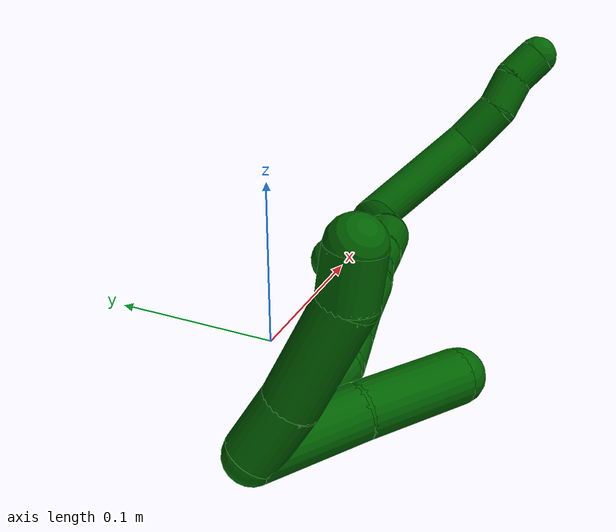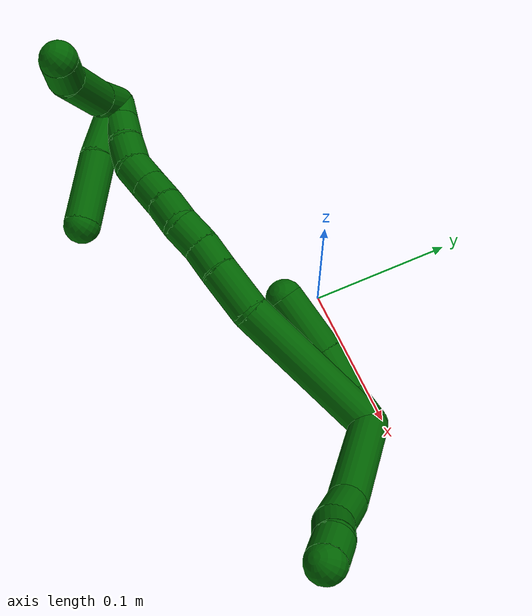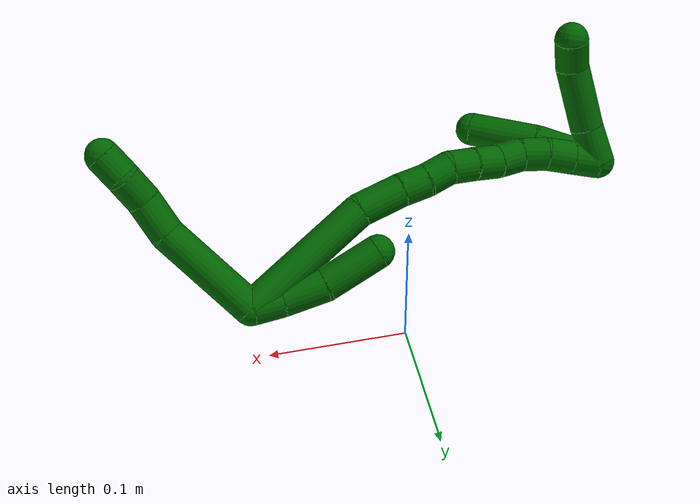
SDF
<sdf version="1.7">
 <world name="default">
  <model name="6">
   <static>0</static>
   <link name="6">
    <collision name="collision-cylinder-e_1_2_8">
     <pose>0.03259 -0.0027 0.021691 0.12386 0.980007 0.066126</pose>
     <geometry><cylinder><radius>0.0125</radius><length>0.078483</length></cylinder></geometry>
     <surface>
      <friction><ode><mu>1.16</mu><mu2>1.16</mu2><slip1>0</slip1><slip2>0</slip2></ode></friction>
      <contact><ode><kp>1e+06</kp><kd>1</kd><max_vel>0</max_vel><min_depth>0.001</min_depth></ode></contact>
     </surface>
    </collision>
    <visual name="visual-cylinder-e_1_2_8">
     <pose>0.03259 -0.0027 0.021691 0.12386 0.980007 0.066126</pose>
     <geometry><cylinder><radius>0.0125</radius><length>0.078483</length></cylinder></geometry>
     <material><ambient>0 0.392157 0.003922 1</ambient></material>
    </visual>
    <collision name="collision-cylinder-e_2_8_9">
     <pose>0.07483 -0.005764 0.054037 0.034035 0.735621 0.013116</pose>
     <geometry><cylinder><radius>0.0125</radius><length>0.028762</length></cylinder></geometry>
     <surface>
      <friction><ode><mu>1.16</mu><mu2>1.16</mu2><slip1>0</slip1><slip2>0</slip2></ode></friction>
      <contact><ode><kp>1e+06</kp><kd>1</kd><max_vel>0</max_vel><min_depth>0.001</min_depth></ode></contact>
     </surface>
    </collision>
    <visual name="visual-cylinder-e_2_8_9">
     <pose>0.07483 -0.005764 0.054037 0.034035 0.735621 0.013116</pose>
     <geometry><cylinder><radius>0.0125</radius><length>0.028762</length></cylinder></geometry>
     <material><ambient>0 0.392157 0.003922 1</ambient></material>
    </visual>
    <collision name="collision-cylinder-e_3_9_10">
     <pose>0.092105 -0.002939 0.072168 -0.403086 0.753549 -0.161337</pose>
     <geometry><cylinder><radius>0.0125</radius><length>0.022287</length></cylinder></geometry>
     <surface>
      <friction><ode><mu>1.16</mu><mu2>1.16</mu2><slip1>0</slip1><slip2>0</slip2></ode></friction>
      <contact><ode><kp>1e+06</kp><kd>1</kd><max_vel>0</max_vel><min_depth>0.001</min_depth></ode></contact>
     </surface>
    </collision>
    <visual name="visual-cylinder-e_3_9_10">
     <pose>0.092105 -0.002939 0.072168 -0.403086 0.753549 -0.161337</pose>
     <geometry><cylinder><radius>0.0125</radius><length>0.022287</length></cylinder></geometry>
     <material><ambient>0 0.392157 0.003922 1</ambient></material>
    </visual>
    <collision name="collision-cylinder-e_4_10_6">
     <pose>0.107666 -8e-06 0.086101 0.039772 0.887429 0.018907</pose>
     <geometry><cylinder><radius>0.0125</radius><length>0.020469</length></cylinder></geometry>
     <surface>
      <friction><ode><mu>1.16</mu><mu2>1.16</mu2><slip1>0</slip1><slip2>0</slip2></ode></friction>
      <contact><ode><kp>1e+06</kp><kd>1</kd><max_vel>0</max_vel><min_depth>0.001</min_depth></ode></contact>
     </surface>
    </collision>
    <visual name="visual-cylinder-e_4_10_6">
     <pose>0.107666 -8e-06 0.086101 0.039772 0.887429 0.018907</pose>
     <geometry><cylinder><radius>0.0125</radius><length>0.020469</length></cylinder></geometry>
     <material><ambient>0 0.392157 0.003922 1</ambient></material>
    </visual>
    <collision name="collision-cylinder-e_1_2_11">
     <pose>-0.010403 -0.00349 0.003681 0.758699 -1.11712 -0.488336</pose>
     <geometry><cylinder><radius>0.0125</radius><length>0.023147</length></cylinder></geometry>
     <surface>
      <friction><ode><mu>1.16</mu><mu2>1.16</mu2><slip1>0</slip1><slip2>0</slip2></ode></friction>
      <contact><ode><kp>1e+06</kp><kd>1</kd><max_vel>0</max_vel><min_depth>0.001</min_depth></ode></contact>
     </surface>
    </collision>
    <visual name="visual-cylinder-e_1_2_11">
     <pose>-0.010403 -0.00349 0.003681 0.758699 -1.11712 -0.488336</pose>
     <geometry><cylinder><radius>0.0125</radius><length>0.023147</length></cylinder></geometry>
     <material><ambient>0 0.392157 0.003922 1</ambient></material>
    </visual>
    <collision name="collision-cylinder-e_2_11_12">
     <pose>-0.035364 -0.008754 0.014743 0.235991 -1.09016 -0.143515</pose>
     <geometry><cylinder><radius>0.0125</radius><length>0.032837</length></cylinder></geometry>
     <surface>
      <friction><ode><mu>1.16</mu><mu2>1.16</mu2><slip1>0</slip1><slip2>0</slip2></ode></friction>
      <contact><ode><kp>1e+06</kp><kd>1</kd><max_vel>0</max_vel><min_depth>0.001</min_depth></ode></contact>
     </surface>
    </collision>
    <visual name="visual-cylinder-e_2_11_12">
     <pose>-0.035364 -0.008754 0.014743 0.235991 -1.09016 -0.143515</pose>
     <geometry><cylinder><radius>0.0125</radius><length>0.032837</length></cylinder></geometry>
     <material><ambient>0 0.392157 0.003922 1</ambient></material>
    </visual>
    <collision name="collision-cylinder-e_3_12_5">
     <pose>-0.066717 -0.013988 0.035919 0.245697 -0.868139 -0.114346</pose>
     <geometry><cylinder><radius>0.0125</radius><length>0.044016</length></cylinder></geometry>
     <surface>
      <friction><ode><mu>1.16</mu><mu2>1.16</mu2><slip1>0</slip1><slip2>0</slip2></ode></friction>
      <contact><ode><kp>1e+06</kp><kd>1</kd><max_vel>0</max_vel><min_depth>0.001</min_depth></ode></contact>
     </surface>
    </collision>
    <visual name="visual-cylinder-e_3_12_5">
     <pose>-0.066717 -0.013988 0.035919 0.245697 -0.868139 -0.114346</pose>
     <geometry><cylinder><radius>0.0125</radius><length>0.044016</length></cylinder></geometry>
     <material><ambient>0 0.392157 0.003922 1</ambient></material>
    </visual>
    <collision name="collision-cylinder-e_1_2_13">
     <pose>-0.033332 -0.015064 0.037664 0.380479 -0.68783 -0.137718</pose>
     <geometry><cylinder><radius>0.0125</radius><length>0.105006</length></cylinder></geometry>
     <surface>
      <friction><ode><mu>1.16</mu><mu2>1.16</mu2><slip1>0</slip1><slip2>0</slip2></ode></friction>
      <contact><ode><kp>1e+06</kp><kd>1</kd><max_vel>0</max_vel><min_depth>0.001</min_depth></ode></contact>
     </surface>
    </collision>
    <visual name="visual-cylinder-e_1_2_13">
     <pose>-0.033332 -0.015064 0.037664 0.380479 -0.68783 -0.137718</pose>
     <geometry><cylinder><radius>0.0125</radius><length>0.105006</length></cylinder></geometry>
     <material><ambient>0 0.392157 0.003922 1</ambient></material>
    </visual>
    <collision name="collision-cylinder-e_2_13_14">
     <pose>-0.080647 -0.034263 0.084161 0.437779 -0.961775 -0.231092</pose>
     <geometry><cylinder><radius>0.0125</radius><length>0.034095</length></cylinder></geometry>
     <surface>
      <friction><ode><mu>1.16</mu><mu2>1.16</mu2><slip1>0</slip1><slip2>0</slip2></ode></friction>
      <contact><ode><kp>1e+06</kp><kd>1</kd><max_vel>0</max_vel><min_depth>0.001</min_depth></ode></contact>
     </surface>
    </collision>
    <visual name="visual-cylinder-e_2_13_14">
     <pose>-0.080647 -0.034263 0.084161 0.437779 -0.961775 -0.231092</pose>
     <geometry><cylinder><radius>0.0125</radius><length>0.034095</length></cylinder></geometry>
     <material><ambient>0 0.392157 0.003922 1</ambient></material>
    </visual>
    <collision name="collision-cylinder-e_3_14_15">
     <pose>-0.103346 -0.04088 0.097404 0.512638 -1.04474 -0.299512</pose>
     <geometry><cylinder><radius>0.0125</radius><length>0.020159</length></cylinder></geometry>
     <surface>
      <friction><ode><mu>1.16</mu><mu2>1.16</mu2><slip1>0</slip1><slip2>0</slip2></ode></friction>
      <contact><ode><kp>1e+06</kp><kd>1</kd><max_vel>0</max_vel><min_depth>0.001</min_depth></ode></contact>
     </surface>
    </collision>
    <visual name="visual-cylinder-e_3_14_15">
     <pose>-0.103346 -0.04088 0.097404 0.512638 -1.04474 -0.299512</pose>
     <geometry><cylinder><radius>0.0125</radius><length>0.020159</length></cylinder></geometry>
     <material><ambient>0 0.392157 0.003922 1</ambient></material>
    </visual>
    <collision name="collision-cylinder-e_4_15_16">
     <pose>-0.119913 -0.046702 0.107195 0.555473 -0.892001 -0.270966</pose>
     <geometry><cylinder><radius>0.0125</radius><length>0.020172</length></cylinder></geometry>
     <surface>
      <friction><ode><mu>1.16</mu><mu2>1.16</mu2><slip1>0</slip1><slip2>0</slip2></ode></friction>
      <contact><ode><kp>1e+06</kp><kd>1</kd><max_vel>0</max_vel><min_depth>0.001</min_depth></ode></contact>
     </surface>
    </collision>
    <visual name="visual-cylinder-e_4_15_16">
     <pose>-0.119913 -0.046702 0.107195 0.555473 -0.892001 -0.270966</pose>
     <geometry><cylinder><radius>0.0125</radius><length>0.020172</length></cylinder></geometry>
     <material><ambient>0 0.392157 0.003922 1</ambient></material>
    </visual>
    <collision name="collision-cylinder-e_5_16_17">
     <pose>-0.13694 -0.053443 0.114791 0.993519 -1.15433 -0.678647</pose>
     <geometry><cylinder><radius>0.0125</radius><length>0.020069</length></cylinder></geometry>
     <surface>
      <friction><ode><mu>1.16</mu><mu2>1.16</mu2><slip1>0</slip1><slip2>0</slip2></ode></friction>
      <contact><ode><kp>1e+06</kp><kd>1</kd><max_vel>0</max_vel><min_depth>0.001</min_depth></ode></contact>
     </surface>
    </collision>
    <visual name="visual-cylinder-e_5_16_17">
     <pose>-0.13694 -0.053443 0.114791 0.993519 -1.15433 -0.678647</pose>
     <geometry><cylinder><radius>0.0125</radius><length>0.020069</length></cylinder></geometry>
     <material><ambient>0 0.392157 0.003922 1</ambient></material>
    </visual>
    <collision name="collision-cylinder-e_6_17_18">
     <pose>-0.155276 -0.06103 0.118739 1.17837 -1.11144 -0.786848</pose>
     <geometry><cylinder><radius>0.0125</radius><length>0.020438</length></cylinder></geometry>
     <surface>
      <friction><ode><mu>1.16</mu><mu2>1.16</mu2><slip1>0</slip1><slip2>0</slip2></ode></friction>
      <contact><ode><kp>1e+06</kp><kd>1</kd><max_vel>0</max_vel><min_depth>0.001</min_depth></ode></contact>
     </surface>
    </collision>
    <visual name="visual-cylinder-e_6_17_18">
     <pose>-0.155276 -0.06103 0.118739 1.17837 -1.11144 -0.786848</pose>
     <geometry><cylinder><radius>0.0125</radius><length>0.020438</length></cylinder></geometry>
     <material><ambient>0 0.392157 0.003922 1</ambient></material>
    </visual>
    <collision name="collision-cylinder-e_7_18_19">
     <pose>-0.173174 -0.068781 0.12383 0.815113 -1.05994 -0.495488</pose>
     <geometry><cylinder><radius>0.0125</radius><length>0.020033</length></cylinder></geometry>
     <surface>
      <friction><ode><mu>1.16</mu><mu2>1.16</mu2><slip1>0</slip1><slip2>0</slip2></ode></friction>
      <contact><ode><kp>1e+06</kp><kd>1</kd><max_vel>0</max_vel><min_depth>0.001</min_depth></ode></contact>
     </surface>
    </collision>
    <visual name="visual-cylinder-e_7_18_19">
     <pose>-0.173174 -0.068781 0.12383 0.815113 -1.05994 -0.495488</pose>
     <geometry><cylinder><radius>0.0125</radius><length>0.020033</length></cylinder></geometry>
     <material><ambient>0 0.392157 0.003922 1</ambient></material>
    </visual>
    <collision name="collision-cylinder-e_8_19_20">
     <pose>-0.191742 -0.073138 0.128882 0.437625 -1.38282 -0.364046</pose>
     <geometry><cylinder><radius>0.0125</radius><length>0.020014</length></cylinder></geometry>
     <surface>
      <friction><ode><mu>1.16</mu><mu2>1.16</mu2><slip1>0</slip1><slip2>0</slip2></ode></friction>
      <contact><ode><kp>1e+06</kp><kd>1</kd><max_vel>0</max_vel><min_depth>0.001</min_depth></ode></contact>
     </surface>
    </collision>
    <visual name="visual-cylinder-e_8_19_20">
     <pose>-0.191742 -0.073138 0.128882 0.437625 -1.38282 -0.364046</pose>
     <geometry><cylinder><radius>0.0125</radius><length>0.020014</length></cylinder></geometry>
     <material><ambient>0 0.392157 0.003922 1</ambient></material>
    </visual>
    <collision name="collision-cylinder-e_9_20_21">
     <pose>-0.211504 -0.075134 0.130375 1.73625 -1.44857 -1.61445</pose>
     <geometry><cylinder><radius>0.0125</radius><length>0.020011</length></cylinder></geometry>
     <surface>
      <friction><ode><mu>1.16</mu><mu2>1.16</mu2><slip1>0</slip1><slip2>0</slip2></ode></friction>
      <contact><ode><kp>1e+06</kp><kd>1</kd><max_vel>0</max_vel><min_depth>0.001</min_depth></ode></contact>
     </surface>
    </collision>
    <visual name="visual-cylinder-e_9_20_21">
     <pose>-0.211504 -0.075134 0.130375 1.73625 -1.44857 -1.61445</pose>
     <geometry><cylinder><radius>0.0125</radius><length>0.020011</length></cylinder></geometry>
     <material><ambient>0 0.392157 0.003922 1</ambient></material>
    </visual>
    <collision name="collision-cylinder-e_10_21_1">
     <pose>-0.231379 -0.077394 0.130047 1.69081 -1.46416 -1.58426</pose>
     <geometry><cylinder><radius>0.0125</radius><length>0.020003</length></cylinder></geometry>
     <surface>
      <friction><ode><mu>1.16</mu><mu2>1.16</mu2><slip1>0</slip1><slip2>0</slip2></ode></friction>
      <contact><ode><kp>1e+06</kp><kd>1</kd><max_vel>0</max_vel><min_depth>0.001</min_depth></ode></contact>
     </surface>
    </collision>
    <visual name="visual-cylinder-e_10_21_1">
     <pose>-0.231379 -0.077394 0.130047 1.69081 -1.46416 -1.58426</pose>
     <geometry><cylinder><radius>0.0125</radius><length>0.020003</length></cylinder></geometry>
     <material><ambient>0 0.392157 0.003922 1</ambient></material>
    </visual>
    <collision name="collision-cylinder-e_1_1_22">
     <pose>-0.21871 -0.086409 0.133244 1.17507 1.20642 0.860253</pose>
     <geometry><cylinder><radius>0.0125</radius><length>0.048407</length></cylinder></geometry>
     <surface>
      <friction><ode><mu>1.16</mu><mu2>1.16</mu2><slip1>0</slip1><slip2>0</slip2></ode></friction>
      <contact><ode><kp>1e+06</kp><kd>1</kd><max_vel>0</max_vel><min_depth>0.001</min_depth></ode></contact>
     </surface>
    </collision>
    <visual name="visual-cylinder-e_1_1_22">
     <pose>-0.21871 -0.086409 0.133244 1.17507 1.20642 0.860253</pose>
     <geometry><cylinder><radius>0.0125</radius><length>0.048407</length></cylinder></geometry>
     <material><ambient>0 0.392157 0.003922 1</ambient></material>
    </visual>
    <collision name="collision-cylinder-e_2_22_4">
     <pose>-0.171731 -0.102842 0.13678 1.54596 1.23596 1.2126</pose>
     <geometry><cylinder><radius>0.0125</radius><length>0.051593</length></cylinder></geometry>
     <surface>
      <friction><ode><mu>1.16</mu><mu2>1.16</mu2><slip1>0</slip1><slip2>0</slip2></ode></friction>
      <contact><ode><kp>1e+06</kp><kd>1</kd><max_vel>0</max_vel><min_depth>0.001</min_depth></ode></contact>
     </surface>
    </collision>
    <visual name="visual-cylinder-e_2_22_4">
     <pose>-0.171731 -0.102842 0.13678 1.54596 1.23596 1.2126</pose>
     <geometry><cylinder><radius>0.0125</radius><length>0.051593</length></cylinder></geometry>
     <material><ambient>0 0.392157 0.003922 1</ambient></material>
    </visual>
    <collision name="collision-cylinder-e_1_1_23">
     <pose>-0.234561 -0.077054 0.142347 -0.111894 0.49577 -0.028347</pose>
     <geometry><cylinder><radius>0.0125</radius><length>0.028436</length></cylinder></geometry>
     <surface>
      <friction><ode><mu>1.16</mu><mu2>1.16</mu2><slip1>0</slip1><slip2>0</slip2></ode></friction>
      <contact><ode><kp>1e+06</kp><kd>1</kd><max_vel>0</max_vel><min_depth>0.001</min_depth></ode></contact>
     </surface>
    </collision>
    <visual name="visual-cylinder-e_1_1_23">
     <pose>-0.234561 -0.077054 0.142347 -0.111894 0.49577 -0.028347</pose>
     <geometry><cylinder><radius>0.0125</radius><length>0.028436</length></cylinder></geometry>
     <material><ambient>0 0.392157 0.003922 1</ambient></material>
    </visual>
    <collision name="collision-cylinder-e_2_23_24">
     <pose>-0.217662 -0.071174 0.176222 -0.206082 0.433272 -0.04551</pose>
     <geometry><cylinder><radius>0.0125</radius><length>0.048282</length></cylinder></geometry>
     <surface>
      <friction><ode><mu>1.16</mu><mu2>1.16</mu2><slip1>0</slip1><slip2>0</slip2></ode></friction>
      <contact><ode><kp>1e+06</kp><kd>1</kd><max_vel>0</max_vel><min_depth>0.001</min_depth></ode></contact>
     </surface>
    </collision>
    <visual name="visual-cylinder-e_2_23_24">
     <pose>-0.217662 -0.071174 0.176222 -0.206082 0.433272 -0.04551</pose>
     <geometry><cylinder><radius>0.0125</radius><length>0.048282</length></cylinder></geometry>
     <material><ambient>0 0.392157 0.003922 1</ambient></material>
    </visual>
    <collision name="collision-cylinder-e_3_24_3">
     <pose>-0.204518 -0.061227 0.207498 -0.507373 0.261373 -0.068129</pose>
     <geometry><cylinder><radius>0.0125</radius><length>0.023282</length></cylinder></geometry>
     <surface>
      <friction><ode><mu>1.16</mu><mu2>1.16</mu2><slip1>0</slip1><slip2>0</slip2></ode></friction>
      <contact><ode><kp>1e+06</kp><kd>1</kd><max_vel>0</max_vel><min_depth>0.001</min_depth></ode></contact>
     </surface>
    </collision>
    <visual name="visual-cylinder-e_3_24_3">
     <pose>-0.204518 -0.061227 0.207498 -0.507373 0.261373 -0.068129</pose>
     <geometry><cylinder><radius>0.0125</radius><length>0.023282</length></cylinder></geometry>
     <material><ambient>0 0.392157 0.003922 1</ambient></material>
    </visual>
    <collision name="collision-sphere-3">
     <pose>-0.20151 -0.055763 0.217327 0 -0 0</pose>
     <geometry><sphere><radius>0.0125</radius></sphere></geometry>
     <surface>
      <friction><ode><mu>1.16</mu><mu2>1.16</mu2><slip1>0</slip1><slip2>0</slip2></ode></friction>
      <contact><ode><kp>1e+06</kp><kd>1</kd><max_vel>0</max_vel><min_depth>0.001</min_depth></ode></contact>
     </surface>
    </collision>
    <visual name="visual-sphere-3">
     <pose>-0.20151 -0.055763 0.217327 0 -0 0</pose>
     <geometry><sphere><radius>0.0125</radius></sphere></geometry>
     <material><ambient>0 0.392157 0.003922 1</ambient></material>
    </visual>
    <collision name="collision-sphere-24">
     <pose>-0.207526 -0.066691 0.197669 0 -0 0</pose>
     <geometry><sphere><radius>0.0125</radius></sphere></geometry>
     <surface>
      <friction><ode><mu>1.16</mu><mu2>1.16</mu2><slip1>0</slip1><slip2>0</slip2></ode></friction>
      <contact><ode><kp>1e+06</kp><kd>1</kd><max_vel>0</max_vel><min_depth>0.001</min_depth></ode></contact>
     </surface>
    </collision>
    <visual name="visual-sphere-24">
     <pose>-0.207526 -0.066691 0.197669 0 -0 0</pose>
     <geometry><sphere><radius>0.0125</radius></sphere></geometry>
     <material><ambient>0 0.392157 0.003922 1</ambient></material>
    </visual>
    <collision name="collision-sphere-23">
     <pose>-0.227797 -0.075658 0.154775 0 -0 0</pose>
     <geometry><sphere><radius>0.0125</radius></sphere></geometry>
     <surface>
      <friction><ode><mu>1.16</mu><mu2>1.16</mu2><slip1>0</slip1><slip2>0</slip2></ode></friction>
      <contact><ode><kp>1e+06</kp><kd>1</kd><max_vel>0</max_vel><min_depth>0.001</min_depth></ode></contact>
     </surface>
    </collision>
    <visual name="visual-sphere-23">
     <pose>-0.227797 -0.075658 0.154775 0 -0 0</pose>
     <geometry><sphere><radius>0.0125</radius></sphere></geometry>
     <material><ambient>0 0.392157 0.003922 1</ambient></material>
    </visual>
    <collision name="collision-sphere-4">
     <pose>-0.147367 -0.111317 0.13699 0 -0 0</pose>
     <geometry><sphere><radius>0.0125</radius></sphere></geometry>
     <surface>
      <friction><ode><mu>1.16</mu><mu2>1.16</mu2><slip1>0</slip1><slip2>0</slip2></ode></friction>
      <contact><ode><kp>1e+06</kp><kd>1</kd><max_vel>0</max_vel><min_depth>0.001</min_depth></ode></contact>
     </surface>
    </collision>
    <visual name="visual-sphere-4">
     <pose>-0.147367 -0.111317 0.13699 0 -0 0</pose>
     <geometry><sphere><radius>0.0125</radius></sphere></geometry>
     <material><ambient>0 0.392157 0.003922 1</ambient></material>
    </visual>
    <collision name="collision-sphere-22">
     <pose>-0.196095 -0.094368 0.136569 0 -0 0</pose>
     <geometry><sphere><radius>0.0125</radius></sphere></geometry>
     <surface>
      <friction><ode><mu>1.16</mu><mu2>1.16</mu2><slip1>0</slip1><slip2>0</slip2></ode></friction>
      <contact><ode><kp>1e+06</kp><kd>1</kd><max_vel>0</max_vel><min_depth>0.001</min_depth></ode></contact>
     </surface>
    </collision>
    <visual name="visual-sphere-22">
     <pose>-0.196095 -0.094368 0.136569 0 -0 0</pose>
     <geometry><sphere><radius>0.0125</radius></sphere></geometry>
     <material><ambient>0 0.392157 0.003922 1</ambient></material>
    </visual>
    <collision name="collision-sphere-1">
     <pose>-0.241324 -0.078451 0.129919 0 -0 0</pose>
     <geometry><sphere><radius>0.0125</radius></sphere></geometry>
     <surface>
      <friction><ode><mu>1.16</mu><mu2>1.16</mu2><slip1>0</slip1><slip2>0</slip2></ode></friction>
      <contact><ode><kp>1e+06</kp><kd>1</kd><max_vel>0</max_vel><min_depth>0.001</min_depth></ode></contact>
     </surface>
    </collision>
    <visual name="visual-sphere-1">
     <pose>-0.241324 -0.078451 0.129919 0 -0 0</pose>
     <geometry><sphere><radius>0.0125</radius></sphere></geometry>
     <material><ambient>0 0.392157 0.003922 1</ambient></material>
    </visual>
    <collision name="collision-sphere-21">
     <pose>-0.221435 -0.076337 0.130174 0 -0 0</pose>
     <geometry><sphere><radius>0.0125</radius></sphere></geometry>
     <surface>
      <friction><ode><mu>1.16</mu><mu2>1.16</mu2><slip1>0</slip1><slip2>0</slip2></ode></friction>
      <contact><ode><kp>1e+06</kp><kd>1</kd><max_vel>0</max_vel><min_depth>0.001</min_depth></ode></contact>
     </surface>
    </collision>
    <visual name="visual-sphere-21">
     <pose>-0.221435 -0.076337 0.130174 0 -0 0</pose>
     <geometry><sphere><radius>0.0125</radius></sphere></geometry>
     <material><ambient>0 0.392157 0.003922 1</ambient></material>
    </visual>
    <collision name="collision-sphere-11">
     <pose>-0.020805 -0.006979 0.007362 0 -0 0</pose>
     <geometry><sphere><radius>0.0125</radius></sphere></geometry>
     <surface>
      <friction><ode><mu>1.16</mu><mu2>1.16</mu2><slip1>0</slip1><slip2>0</slip2></ode></friction>
      <contact><ode><kp>1e+06</kp><kd>1</kd><max_vel>0</max_vel><min_depth>0.001</min_depth></ode></contact>
     </surface>
    </collision>
    <visual name="visual-sphere-11">
     <pose>-0.020805 -0.006979 0.007362 0 -0 0</pose>
     <geometry><sphere><radius>0.0125</radius></sphere></geometry>
     <material><ambient>0 0.392157 0.003922 1</ambient></material>
    </visual>
    <collision name="collision-sphere-6">
     <pose>0.115602 -0.000265 0.092558 0 -0 0</pose>
     <geometry><sphere><radius>0.0125</radius></sphere></geometry>
     <surface>
      <friction><ode><mu>1.16</mu><mu2>1.16</mu2><slip1>0</slip1><slip2>0</slip2></ode></friction>
      <contact><ode><kp>1e+06</kp><kd>1</kd><max_vel>0</max_vel><min_depth>0.001</min_depth></ode></contact>
     </surface>
    </collision>
    <visual name="visual-sphere-6">
     <pose>0.115602 -0.000265 0.092558 0 -0 0</pose>
     <geometry><sphere><radius>0.0125</radius></sphere></geometry>
     <material><ambient>0 0.392157 0.003922 1</ambient></material>
    </visual>
    <collision name="collision-sphere-10">
     <pose>0.09973 0.000249 0.079644 0 -0 0</pose>
     <geometry><sphere><radius>0.0125</radius></sphere></geometry>
     <surface>
      <friction><ode><mu>1.16</mu><mu2>1.16</mu2><slip1>0</slip1><slip2>0</slip2></ode></friction>
      <contact><ode><kp>1e+06</kp><kd>1</kd><max_vel>0</max_vel><min_depth>0.001</min_depth></ode></contact>
     </surface>
    </collision>
    <visual name="visual-sphere-10">
     <pose>0.09973 0.000249 0.079644 0 -0 0</pose>
     <geometry><sphere><radius>0.0125</radius></sphere></geometry>
     <material><ambient>0 0.392157 0.003922 1</ambient></material>
    </visual>
    <collision name="collision-sphere-9">
     <pose>0.084481 -0.006126 0.064693 0 -0 0</pose>
     <geometry><sphere><radius>0.0125</radius></sphere></geometry>
     <surface>
      <friction><ode><mu>1.16</mu><mu2>1.16</mu2><slip1>0</slip1><slip2>0</slip2></ode></friction>
      <contact><ode><kp>1e+06</kp><kd>1</kd><max_vel>0</max_vel><min_depth>0.001</min_depth></ode></contact>
     </surface>
    </collision>
    <visual name="visual-sphere-9">
     <pose>0.084481 -0.006126 0.064693 0 -0 0</pose>
     <geometry><sphere><radius>0.0125</radius></sphere></geometry>
     <material><ambient>0 0.392157 0.003922 1</ambient></material>
    </visual>
    <collision name="collision-sphere-2">
     <geometry><sphere><radius>0.0125</radius></sphere></geometry>
     <surface>
      <friction><ode><mu>1.16</mu><mu2>1.16</mu2><slip1>0</slip1><slip2>0</slip2></ode></friction>
      <contact><ode><kp>1e+06</kp><kd>1</kd><max_vel>0</max_vel><min_depth>0.001</min_depth></ode></contact>
     </surface>
    </collision>
    <visual name="visual-sphere-2">
     <geometry><sphere><radius>0.0125</radius></sphere></geometry>
     <material><ambient>0 0.392157 0.003922 1</ambient></material>
    </visual>
    <collision name="collision-sphere-19">
     <pose>-0.181911 -0.072345 0.127189 0 -0 0</pose>
     <geometry><sphere><radius>0.0125</radius></sphere></geometry>
     <surface>
      <friction><ode><mu>1.16</mu><mu2>1.16</mu2><slip1>0</slip1><slip2>0</slip2></ode></friction>
      <contact><ode><kp>1e+06</kp><kd>1</kd><max_vel>0</max_vel><min_depth>0.001</min_depth></ode></contact>
     </surface>
    </collision>
    <visual name="visual-sphere-19">
     <pose>-0.181911 -0.072345 0.127189 0 -0 0</pose>
     <geometry><sphere><radius>0.0125</radius></sphere></geometry>
     <material><ambient>0 0.392157 0.003922 1</ambient></material>
    </visual>
    <collision name="collision-sphere-8">
     <pose>0.06518 -0.005401 0.043381 0 -0 0</pose>
     <geometry><sphere><radius>0.0125</radius></sphere></geometry>
     <surface>
      <friction><ode><mu>1.16</mu><mu2>1.16</mu2><slip1>0</slip1><slip2>0</slip2></ode></friction>
      <contact><ode><kp>1e+06</kp><kd>1</kd><max_vel>0</max_vel><min_depth>0.001</min_depth></ode></contact>
     </surface>
    </collision>
    <visual name="visual-sphere-8">
     <pose>0.06518 -0.005401 0.043381 0 -0 0</pose>
     <geometry><sphere><radius>0.0125</radius></sphere></geometry>
     <material><ambient>0 0.392157 0.003922 1</ambient></material>
    </visual>
    <collision name="collision-sphere-12">
     <pose>-0.049922 -0.010529 0.022124 0 -0 0</pose>
     <geometry><sphere><radius>0.0125</radius></sphere></geometry>
     <surface>
      <friction><ode><mu>1.16</mu><mu2>1.16</mu2><slip1>0</slip1><slip2>0</slip2></ode></friction>
      <contact><ode><kp>1e+06</kp><kd>1</kd><max_vel>0</max_vel><min_depth>0.001</min_depth></ode></contact>
     </surface>
    </collision>
    <visual name="visual-sphere-12">
     <pose>-0.049922 -0.010529 0.022124 0 -0 0</pose>
     <geometry><sphere><radius>0.0125</radius></sphere></geometry>
     <material><ambient>0 0.392157 0.003922 1</ambient></material>
    </visual>
    <collision name="collision-sphere-5">
     <pose>-0.083512 -0.017448 0.049715 0 -0 0</pose>
     <geometry><sphere><radius>0.0125</radius></sphere></geometry>
     <surface>
      <friction><ode><mu>1.16</mu><mu2>1.16</mu2><slip1>0</slip1><slip2>0</slip2></ode></friction>
      <contact><ode><kp>1e+06</kp><kd>1</kd><max_vel>0</max_vel><min_depth>0.001</min_depth></ode></contact>
     </surface>
    </collision>
    <visual name="visual-sphere-5">
     <pose>-0.083512 -0.017448 0.049715 0 -0 0</pose>
     <geometry><sphere><radius>0.0125</radius></sphere></geometry>
     <material><ambient>0 0.392157 0.003922 1</ambient></material>
    </visual>
    <collision name="collision-sphere-13">
     <pose>-0.066664 -0.030129 0.075328 0 -0 0</pose>
     <geometry><sphere><radius>0.0125</radius></sphere></geometry>
     <surface>
      <friction><ode><mu>1.16</mu><mu2>1.16</mu2><slip1>0</slip1><slip2>0</slip2></ode></friction>
      <contact><ode><kp>1e+06</kp><kd>1</kd><max_vel>0</max_vel><min_depth>0.001</min_depth></ode></contact>
     </surface>
    </collision>
    <visual name="visual-sphere-13">
     <pose>-0.066664 -0.030129 0.075328 0 -0 0</pose>
     <geometry><sphere><radius>0.0125</radius></sphere></geometry>
     <material><ambient>0 0.392157 0.003922 1</ambient></material>
    </visual>
    <collision name="collision-sphere-14">
     <pose>-0.094629 -0.038397 0.092994 0 -0 0</pose>
     <geometry><sphere><radius>0.0125</radius></sphere></geometry>
     <surface>
      <friction><ode><mu>1.16</mu><mu2>1.16</mu2><slip1>0</slip1><slip2>0</slip2></ode></friction>
      <contact><ode><kp>1e+06</kp><kd>1</kd><max_vel>0</max_vel><min_depth>0.001</min_depth></ode></contact>
     </surface>
    </collision>
    <visual name="visual-sphere-14">
     <pose>-0.094629 -0.038397 0.092994 0 -0 0</pose>
     <geometry><sphere><radius>0.0125</radius></sphere></geometry>
     <material><ambient>0 0.392157 0.003922 1</ambient></material>
    </visual>
    <collision name="collision-sphere-15">
     <pose>-0.112063 -0.043362 0.101815 0 -0 0</pose>
     <geometry><sphere><radius>0.0125</radius></sphere></geometry>
     <surface>
      <friction><ode><mu>1.16</mu><mu2>1.16</mu2><slip1>0</slip1><slip2>0</slip2></ode></friction>
      <contact><ode><kp>1e+06</kp><kd>1</kd><max_vel>0</max_vel><min_depth>0.001</min_depth></ode></contact>
     </surface>
    </collision>
    <visual name="visual-sphere-15">
     <pose>-0.112063 -0.043362 0.101815 0 -0 0</pose>
     <geometry><sphere><radius>0.0125</radius></sphere></geometry>
     <material><ambient>0 0.392157 0.003922 1</ambient></material>
    </visual>
    <collision name="collision-sphere-16">
     <pose>-0.127763 -0.050041 0.112575 0 -0 0</pose>
     <geometry><sphere><radius>0.0125</radius></sphere></geometry>
     <surface>
      <friction><ode><mu>1.16</mu><mu2>1.16</mu2><slip1>0</slip1><slip2>0</slip2></ode></friction>
      <contact><ode><kp>1e+06</kp><kd>1</kd><max_vel>0</max_vel><min_depth>0.001</min_depth></ode></contact>
     </surface>
    </collision>
    <visual name="visual-sphere-16">
     <pose>-0.127763 -0.050041 0.112575 0 -0 0</pose>
     <geometry><sphere><radius>0.0125</radius></sphere></geometry>
     <material><ambient>0 0.392157 0.003922 1</ambient></material>
    </visual>
    <collision name="collision-sphere-17">
     <pose>-0.146117 -0.056844 0.117006 0 -0 0</pose>
     <geometry><sphere><radius>0.0125</radius></sphere></geometry>
     <surface>
      <friction><ode><mu>1.16</mu><mu2>1.16</mu2><slip1>0</slip1><slip2>0</slip2></ode></friction>
      <contact><ode><kp>1e+06</kp><kd>1</kd><max_vel>0</max_vel><min_depth>0.001</min_depth></ode></contact>
     </surface>
    </collision>
    <visual name="visual-sphere-17">
     <pose>-0.146117 -0.056844 0.117006 0 -0 0</pose>
     <geometry><sphere><radius>0.0125</radius></sphere></geometry>
     <material><ambient>0 0.392157 0.003922 1</ambient></material>
    </visual>
    <collision name="collision-sphere-18">
     <pose>-0.164436 -0.065217 0.120472 0 -0 0</pose>
     <geometry><sphere><radius>0.0125</radius></sphere></geometry>
     <surface>
      <friction><ode><mu>1.16</mu><mu2>1.16</mu2><slip1>0</slip1><slip2>0</slip2></ode></friction>
      <contact><ode><kp>1e+06</kp><kd>1</kd><max_vel>0</max_vel><min_depth>0.001</min_depth></ode></contact>
     </surface>
    </collision>
    <visual name="visual-sphere-18">
     <pose>-0.164436 -0.065217 0.120472 0 -0 0</pose>
     <geometry><sphere><radius>0.0125</radius></sphere></geometry>
     <material><ambient>0 0.392157 0.003922 1</ambient></material>
    </visual>
    <collision name="collision-sphere-20">
     <pose>-0.201573 -0.07393 0.130576 0 -0 0</pose>
     <geometry><sphere><radius>0.0125</radius></sphere></geometry>
     <surface>
      <friction><ode><mu>1.16</mu><mu2>1.16</mu2><slip1>0</slip1><slip2>0</slip2></ode></friction>
      <contact><ode><kp>1e+06</kp><kd>1</kd><max_vel>0</max_vel><min_depth>0.001</min_depth></ode></contact>
     </surface>
    </collision>
    <visual name="visual-sphere-20">
     <pose>-0.201573 -0.07393 0.130576 0 -0 0</pose>
     <geometry><sphere><radius>0.0125</radius></sphere></geometry>
     <material><ambient>0 0.392157 0.003922 1</ambient></material>
    </visual>
    <inertial>
     <pose>-0.092802 -0.040931 0.087497 0 -0 0</pose>
     <mass>0.75</mass>
     <inertia>
      <ixx>0.000126</ixx>
      <ixy>0</ixy>
      <ixz>0</ixz>
      <iyy>0.000199</iyy>
      <iyz>0</iyz>
      <izz>9.1e-05</izz>
     </inertia>
    </inertial>
   </link>
   <pose>0.108551 -0.017334 0.033622 0.5748 -0.138567 -0.279948</pose>
  </model>
 </world>
</sdf>
